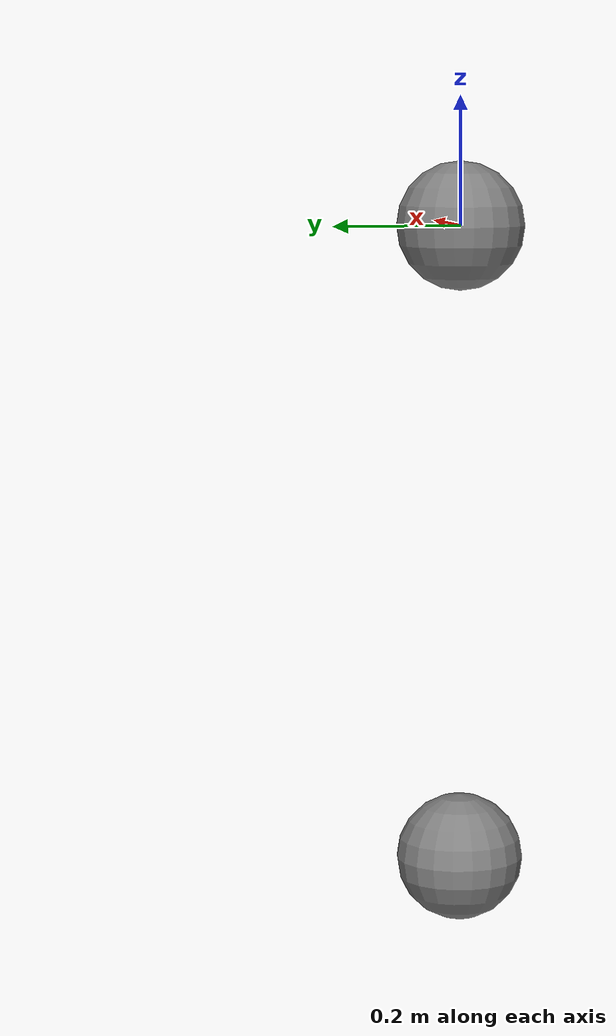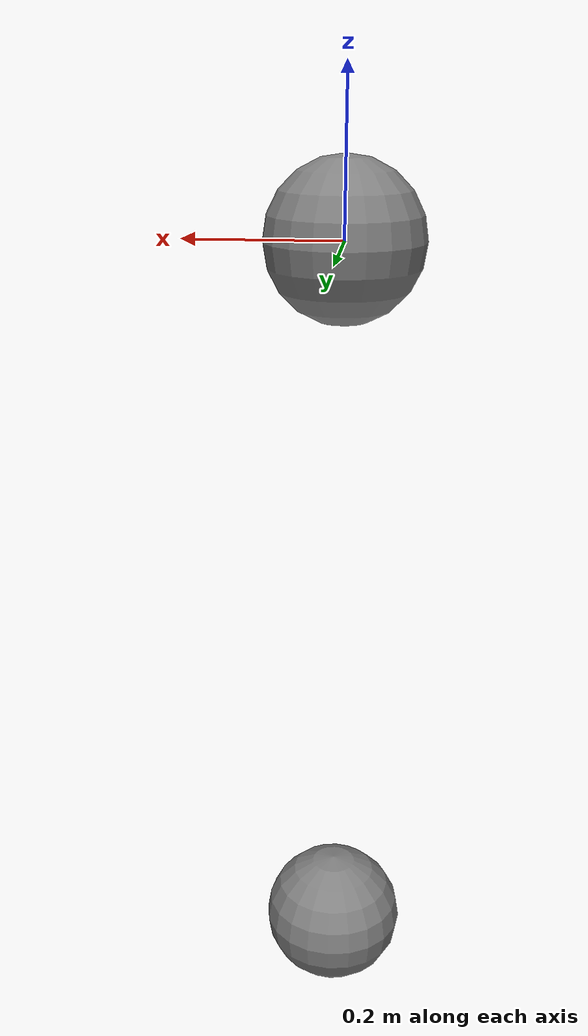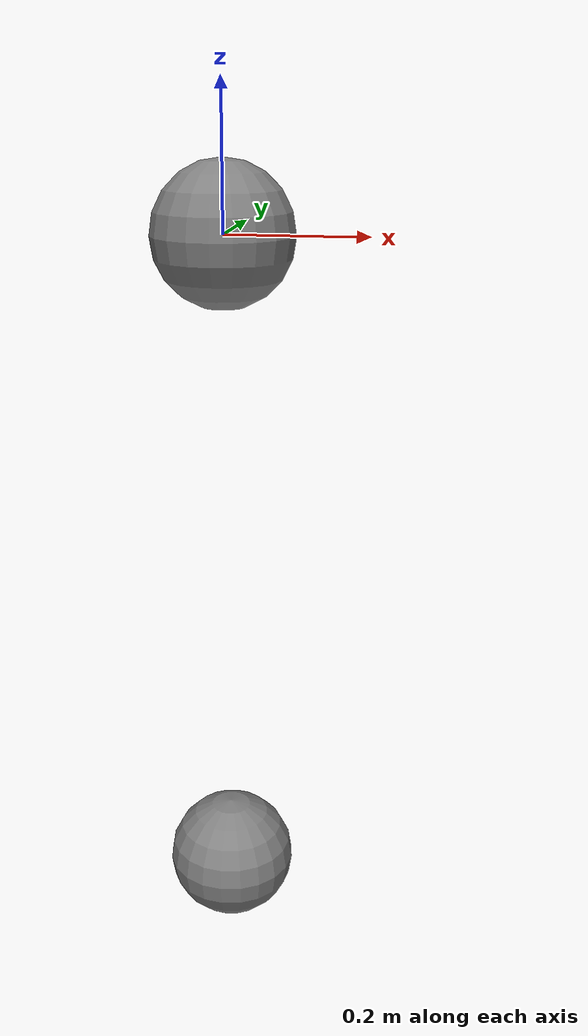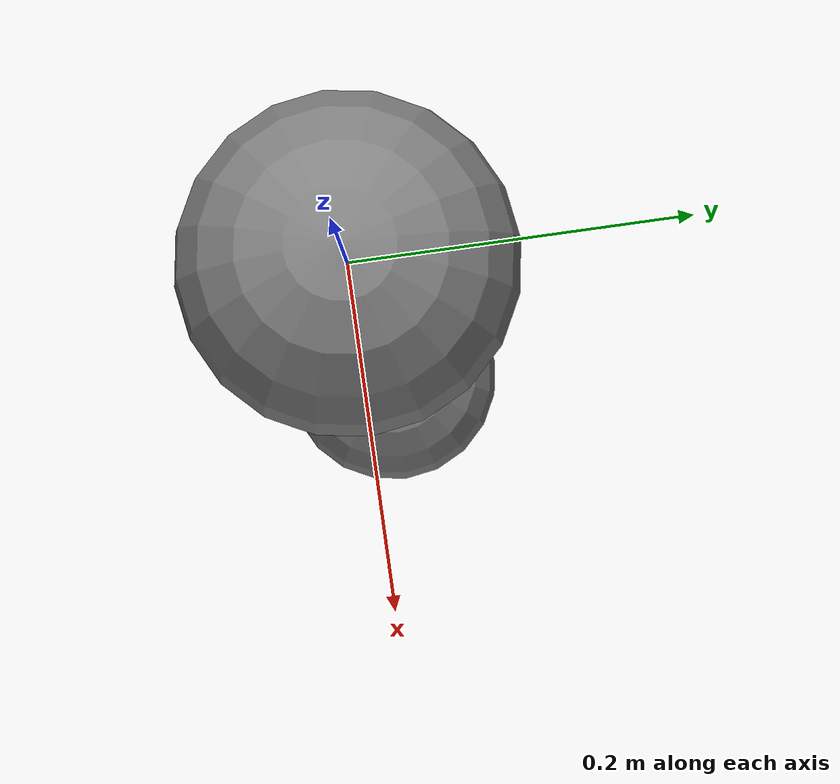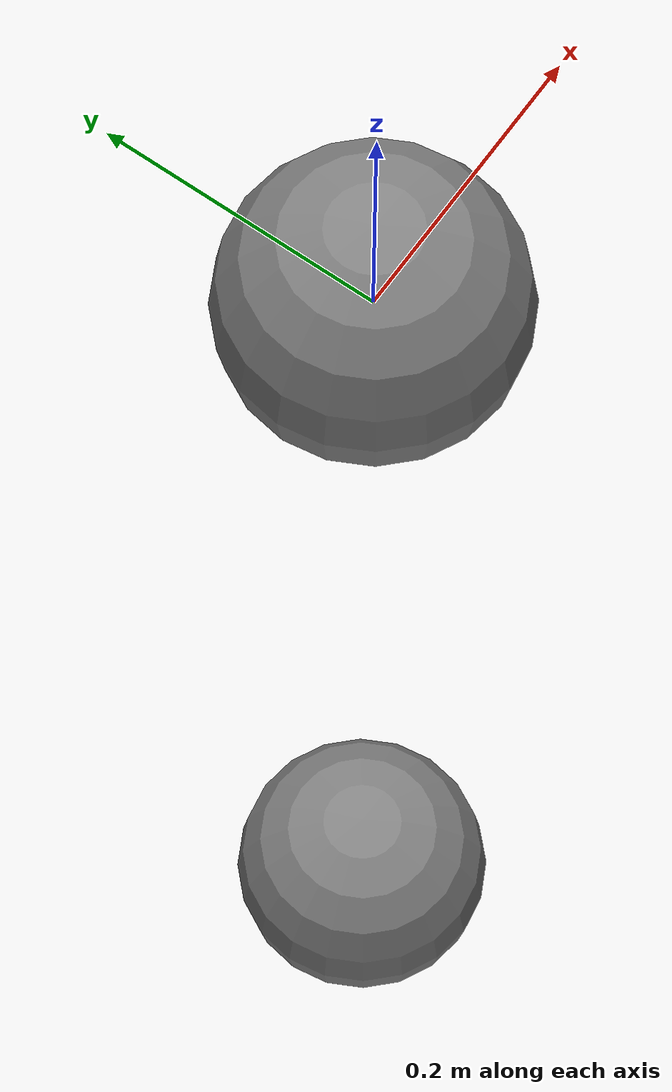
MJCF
<mujoco model="tendon_impl">
            <option timestep="0.001" integrator="{integrator}"
                    solver="{solver}" gravity="0 0 0"/>
            <worldbody>
                <body name="b1" pos="0 0 0">
                    <joint name="j0" type="hinge" axis="0 1 0"
                           stiffness="0" damping="0"/>
                    <geom type="sphere" size="0.1" mass="1.0"/>
                    <body name="b2" pos="0 0 -1">
                        <joint name="j1" type="hinge" axis="0 1 0"
                               stiffness="0" damping="0"/>
                        <geom type="sphere" size="0.1" mass="1.0"/>
                    </body>
                </body>
            </worldbody>
            <tendon>
                <fixed name="t0" stiffness="{stiffness}" damping="{damping}"
                       springlength="0 0">
                    <joint joint="j0" coef="1.0"/>
                    <joint joint="j1" coef="-1.0"/>
                </fixed>
            </tendon>
        </mujoco>
